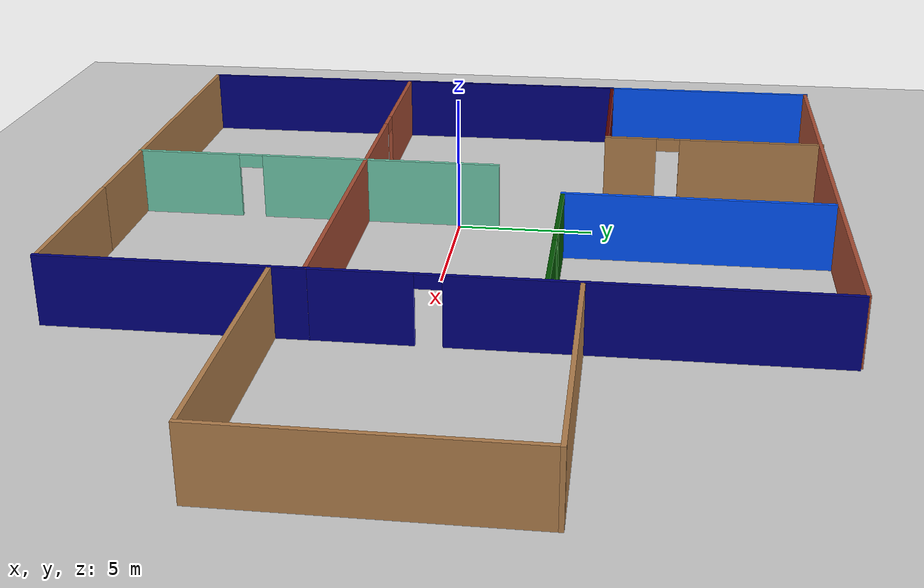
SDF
<sdf version="1.6">
 <world name="default">
  <model name="ground_plane">
   <static>1</static>
   <link name="link">
    <collision name="collision">
     <geometry><plane><normal>0 0 1</normal><size>100 100</size></plane></geometry>
     <surface><friction><ode><mu>100</mu><mu2>50</mu2></ode></friction></surface>
    </collision>
    <visual name="visual">
     <cast_shadows>0</cast_shadows>
     <geometry><plane><normal>0 0 1</normal><size>100 100</size></plane></geometry>
     <material>
      <script><uri>file://media/materials/scripts/gazebo.material</uri><name>Gazebo/Grey</name></script>
     </material>
    </visual>
   </link>
  </model>
  <model name="RGB_Walls_And_Doors">
   <link name="Wall_13">
    <pose>-4.768 13.0532 0 0 -0 3.14159</pose>
    <visual name="Wall_13_Visual">
     <pose>0 0 1.25 0 -0 0</pose>
     <geometry><box><size>20.35 0.15 2.5</size></box></geometry>
     <material>
      <script><uri>file://media/materials/scripts/gazebo.material</uri><name>Gazebo/Bricks</name></script>
      <ambient>1 1 1 1</ambient>
      <diffuse>1 1 1 1</diffuse>
      <specular>0.2 0.2 0.2 1</specular>
      <emissive>0 0 0 1</emissive>
     </material>
    </visual>
    <collision name="Wall_13_Collision">
     <pose>0 0 1.25 0 -0 0</pose>
     <geometry><box><size>20.35 0.15 2.5</size></box></geometry>
     <surface>
      <friction>
       <ode><mu>1</mu><mu2>1</mu2><fdir1>0 0 0</fdir1><slip1>0</slip1><slip2>0</slip2></ode>
       <torsional>
        <coefficient>1</coefficient>
        <patch_radius>0</patch_radius>
        <surface_radius>0</surface_radius>
        <use_patch_radius>1</use_patch_radius>
        <ode><slip>0</slip></ode>
       </torsional>
      </friction>
      <bounce><restitution_coefficient>0</restitution_coefficient><threshold>1e+06</threshold></bounce>
      <contact>
       <collide_without_contact>0</collide_without_contact>
       <collide_without_contact_bitmask>1</collide_without_contact_bitmask>
       <collide_bitmask>1</collide_bitmask>
       <ode>
        <soft_cfm>0</soft_cfm>
        <soft_erp>0.2</soft_erp>
        <kp>1e+13</kp>
        <kd>1</kd>
        <max_vel>0.01</max_vel>
        <min_depth>0</min_depth>
       </ode>
       <bullet>
        <split_impulse>1</split_impulse>
        <split_impulse_penetration_threshold>-0.01</split_impulse_penetration_threshold>
        <soft_cfm>0</soft_cfm>
        <soft_erp>0.2</soft_erp>
        <kp>1e+13</kp>
        <kd>1</kd>
       </bullet>
      </contact>
     </surface>
    </collision>
   </link>
   <link name="Wall_15">
    <pose>-7.693 -13.0468 0 0 -0 3.14159</pose>
    <visual name="Wall_15_Visual">
     <pose>0 0 1.25 0 -0 0</pose>
     <geometry><box><size>14.5 0.15 2.5</size></box></geometry>
     <material>
      <script><uri>file://media/materials/scripts/gazebo.material</uri><name>Gazebo/Wood</name></script>
      <ambient>1 1 1 1</ambient>
      <diffuse>1 1 1 1</diffuse>
      <specular>0.2 0.2 0.2 1</specular>
      <emissive>0 0 0 1</emissive>
     </material>
    </visual>
    <collision name="Wall_15_Collision">
     <pose>0 0 1.25 0 -0 0</pose>
     <geometry><box><size>14.5 0.15 2.5</size></box></geometry>
     <surface>
      <friction>
       <ode><mu>1</mu><mu2>1</mu2><fdir1>0 0 0</fdir1><slip1>0</slip1><slip2>0</slip2></ode>
       <torsional>
        <coefficient>1</coefficient>
        <patch_radius>0</patch_radius>
        <surface_radius>0</surface_radius>
        <use_patch_radius>1</use_patch_radius>
        <ode><slip>0</slip></ode>
       </torsional>
      </friction>
      <bounce><restitution_coefficient>0</restitution_coefficient><threshold>1e+06</threshold></bounce>
      <contact>
       <collide_without_contact>0</collide_without_contact>
       <collide_without_contact_bitmask>1</collide_without_contact_bitmask>
       <collide_bitmask>1</collide_bitmask>
       <ode>
        <soft_cfm>0</soft_cfm>
        <soft_erp>0.2</soft_erp>
        <kp>1e+13</kp>
        <kd>1</kd>
        <max_vel>0.01</max_vel>
        <min_depth>0</min_depth>
       </ode>
       <bullet>
        <split_impulse>1</split_impulse>
        <split_impulse_penetration_threshold>-0.01</split_impulse_penetration_threshold>
        <soft_cfm>0</soft_cfm>
        <soft_erp>0.2</soft_erp>
        <kp>1e+13</kp>
        <kd>1</kd>
       </bullet>
      </contact>
     </surface>
    </collision>
   </link>
   <link name="Wall_19">
    <pose>14.9404 -0.436235 0 0 -0 1.5708</pose>
    <visual name="Wall_19_Visual">
     <pose>0 0 1.25 0 -0 0</pose>
     <geometry><box><size>10 0.15 2.5</size></box></geometry>
     <material>
      <script><uri>file://media/materials/scripts/gazebo.material</uri><name>Gazebo/Wood</name></script>
      <ambient>1 1 1 1</ambient>
      <diffuse>1 1 1 1</diffuse>
      <specular>0.2 0.2 0.2 1</specular>
      <emissive>0 0 0 1</emissive>
     </material>
    </visual>
    <collision name="Wall_19_Collision">
     <pose>0 0 1.25 0 -0 0</pose>
     <geometry><box><size>10 0.15 2.5</size></box></geometry>
     <surface>
      <friction>
       <ode><mu>1</mu><mu2>1</mu2><fdir1>0 0 0</fdir1><slip1>0</slip1><slip2>0</slip2></ode>
       <torsional>
        <coefficient>1</coefficient>
        <patch_radius>0</patch_radius>
        <surface_radius>0</surface_radius>
        <use_patch_radius>1</use_patch_radius>
        <ode><slip>0</slip></ode>
       </torsional>
      </friction>
      <bounce><restitution_coefficient>0</restitution_coefficient><threshold>1e+06</threshold></bounce>
      <contact>
       <collide_without_contact>0</collide_without_contact>
       <collide_without_contact_bitmask>1</collide_without_contact_bitmask>
       <collide_bitmask>1</collide_bitmask>
       <ode>
        <soft_cfm>0</soft_cfm>
        <soft_erp>0.2</soft_erp>
        <kp>1e+13</kp>
        <kd>1</kd>
        <max_vel>0.01</max_vel>
        <min_depth>0</min_depth>
       </ode>
       <bullet>
        <split_impulse>1</split_impulse>
        <split_impulse_penetration_threshold>-0.01</split_impulse_penetration_threshold>
        <soft_cfm>0</soft_cfm>
        <soft_erp>0.2</soft_erp>
        <kp>1e+13</kp>
        <kd>1</kd>
       </bullet>
      </contact>
     </surface>
    </collision>
   </link>
   <link name="Wall_23">
    <pose>1.6654 3.38876 0 0 -0 3.14159</pose>
    <visual name="Wall_23_Visual_0">
     <pose>-2.17368 0 1.25 0 -0 0</pose>
     <geometry><box><size>3.15264 0.15 2.5</size></box></geometry>
     <material>
      <script><uri>file://media/materials/scripts/gazebo.material</uri><name>Gazebo/Grey</name></script>
      <ambient>0 0.333333 0 1</ambient>
      <diffuse>0.7 0.7 0.7 1</diffuse>
      <specular>0.01 0.01 0.01 1</specular>
      <emissive>0 0 0 1</emissive>
     </material>
    </visual>
    <visual name="Wall_23_Visual_1">
     <pose>2.02632 0 1.25 0 -0 0</pose>
     <geometry><box><size>3.44736 0.15 2.5</size></box></geometry>
     <material>
      <script><uri>file://media/materials/scripts/gazebo.material</uri><name>Gazebo/Grey</name></script>
      <ambient>0 0.333333 0 1</ambient>
      <diffuse>0.7 0.7 0.7 1</diffuse>
      <specular>0.01 0.01 0.01 1</specular>
      <emissive>0 0 0 1</emissive>
     </material>
    </visual>
    <visual name="Wall_23_Visual_2">
     <pose>-0.147364 0 2.25 0 -0 0</pose>
     <geometry><box><size>0.9 0.15 0.5</size></box></geometry>
     <material>
      <script><uri>file://media/materials/scripts/gazebo.material</uri><name>Gazebo/Grey</name></script>
      <ambient>0 0.333333 0 1</ambient>
      <diffuse>0.7 0.7 0.7 1</diffuse>
      <specular>0.01 0.01 0.01 1</specular>
      <emissive>0 0 0 1</emissive>
     </material>
    </visual>
    <collision name="Wall_23_Collision_0">
     <pose>-2.17368 0 1.25 0 -0 0</pose>
     <geometry><box><size>3.15264 0.15 2.5</size></box></geometry>
     <surface>
      <friction>
       <ode><mu>1</mu><mu2>1</mu2><fdir1>0 0 0</fdir1><slip1>0</slip1><slip2>0</slip2></ode>
       <torsional>
        <coefficient>1</coefficient>
        <patch_radius>0</patch_radius>
        <surface_radius>0</surface_radius>
        <use_patch_radius>1</use_patch_radius>
        <ode><slip>0</slip></ode>
       </torsional>
      </friction>
      <bounce><restitution_coefficient>0</restitution_coefficient><threshold>1e+06</threshold></bounce>
      <contact>
       <collide_without_contact>0</collide_without_contact>
       <collide_without_contact_bitmask>1</collide_without_contact_bitmask>
       <collide_bitmask>1</collide_bitmask>
       <ode>
        <soft_cfm>0</soft_cfm>
        <soft_erp>0.2</soft_erp>
        <kp>1e+13</kp>
        <kd>1</kd>
        <max_vel>0.01</max_vel>
        <min_depth>0</min_depth>
       </ode>
       <bullet>
        <split_impulse>1</split_impulse>
        <split_impulse_penetration_threshold>-0.01</split_impulse_penetration_threshold>
        <soft_cfm>0</soft_cfm>
        <soft_erp>0.2</soft_erp>
        <kp>1e+13</kp>
        <kd>1</kd>
       </bullet>
      </contact>
     </surface>
    </collision>
    <collision name="Wall_23_Collision_1">
     <pose>2.02632 0 1.25 0 -0 0</pose>
     <geometry><box><size>3.44736 0.15 2.5</size></box></geometry>
     <surface>
      <friction>
       <ode><mu>1</mu><mu2>1</mu2><fdir1>0 0 0</fdir1><slip1>0</slip1><slip2>0</slip2></ode>
       <torsional>
        <coefficient>1</coefficient>
        <patch_radius>0</patch_radius>
        <surface_radius>0</surface_radius>
        <use_patch_radius>1</use_patch_radius>
        <ode><slip>0</slip></ode>
       </torsional>
      </friction>
      <bounce><restitution_coefficient>0</restitution_coefficient><threshold>1e+06</threshold></bounce>
      <contact>
       <collide_without_contact>0</collide_without_contact>
       <collide_without_contact_bitmask>1</collide_without_contact_bitmask>
       <collide_bitmask>1</collide_bitmask>
       <ode>
        <soft_cfm>0</soft_cfm>
        <soft_erp>0.2</soft_erp>
        <kp>1e+13</kp>
        <kd>1</kd>
        <max_vel>0.01</max_vel>
        <min_depth>0</min_depth>
       </ode>
       <bullet>
        <split_impulse>1</split_impulse>
        <split_impulse_penetration_threshold>-0.01</split_impulse_penetration_threshold>
        <soft_cfm>0</soft_cfm>
        <soft_erp>0.2</soft_erp>
        <kp>1e+13</kp>
        <kd>1</kd>
       </bullet>
      </contact>
     </surface>
    </collision>
    <collision name="Wall_23_Collision_2">
     <pose>-0.147364 0 2.25 0 -0 0</pose>
     <geometry><box><size>0.9 0.15 0.5</size></box></geometry>
     <surface>
      <friction>
       <ode><mu>1</mu><mu2>1</mu2><fdir1>0 0 0</fdir1><slip1>0</slip1><slip2>0</slip2></ode>
       <torsional>
        <coefficient>1</coefficient>
        <patch_radius>0</patch_radius>
        <surface_radius>0</surface_radius>
        <use_patch_radius>1</use_patch_radius>
        <ode><slip>0</slip></ode>
       </torsional>
      </friction>
      <bounce><restitution_coefficient>0</restitution_coefficient><threshold>1e+06</threshold></bounce>
      <contact>
       <collide_without_contact>0</collide_without_contact>
       <collide_without_contact_bitmask>1</collide_without_contact_bitmask>
       <collide_bitmask>1</collide_bitmask>
       <ode>
        <soft_cfm>0</soft_cfm>
        <soft_erp>0.2</soft_erp>
        <kp>1e+13</kp>
        <kd>1</kd>
        <max_vel>0.01</max_vel>
        <min_depth>0</min_depth>
       </ode>
       <bullet>
        <split_impulse>1</split_impulse>
        <split_impulse_penetration_threshold>-0.01</split_impulse_penetration_threshold>
        <soft_cfm>0</soft_cfm>
        <soft_erp>0.2</soft_erp>
        <kp>1e+13</kp>
        <kd>1</kd>
       </bullet>
      </contact>
     </surface>
    </collision>
   </link>
   <link name="Wall_24">
    <pose>-2.0096 8.18877 0 0 -0 1.5708</pose>
    <visual name="Wall_24_Visual">
     <pose>0 0 1.25 0 -0 0</pose>
     <geometry><box><size>9.75 0.15 2.5</size></box></geometry>
     <material>
      <script><uri>file://media/materials/scripts/gazebo.material</uri><name>Gazebo/Grey</name></script>
      <ambient>0 0.333333 1 1</ambient>
      <diffuse>0.7 0.7 0.7 1</diffuse>
      <specular>0.01 0.01 0.01 1</specular>
      <emissive>0 0 0 1</emissive>
     </material>
    </visual>
    <collision name="Wall_24_Collision">
     <pose>0 0 1.25 0 -0 0</pose>
     <geometry><box><size>9.75 0.15 2.5</size></box></geometry>
     <surface>
      <friction>
       <ode><mu>1</mu><mu2>1</mu2><fdir1>0 0 0</fdir1><slip1>0</slip1><slip2>0</slip2></ode>
       <torsional>
        <coefficient>1</coefficient>
        <patch_radius>0</patch_radius>
        <surface_radius>0</surface_radius>
        <use_patch_radius>1</use_patch_radius>
        <ode><slip>0</slip></ode>
       </torsional>
      </friction>
      <bounce><restitution_coefficient>0</restitution_coefficient><threshold>1e+06</threshold></bounce>
      <contact>
       <collide_without_contact>0</collide_without_contact>
       <collide_without_contact_bitmask>1</collide_without_contact_bitmask>
       <collide_bitmask>1</collide_bitmask>
       <ode>
        <soft_cfm>0</soft_cfm>
        <soft_erp>0.2</soft_erp>
        <kp>1e+13</kp>
        <kd>1</kd>
        <max_vel>0.01</max_vel>
        <min_depth>0</min_depth>
       </ode>
       <bullet>
        <split_impulse>1</split_impulse>
        <split_impulse_penetration_threshold>-0.01</split_impulse_penetration_threshold>
        <soft_cfm>0</soft_cfm>
        <soft_erp>0.2</soft_erp>
        <kp>1e+13</kp>
        <kd>1</kd>
       </bullet>
      </contact>
     </surface>
    </collision>
   </link>
   <link name="Wall_32">
    <pose>-8.34009 8.91706 0 0 -0 1.5708</pose>
    <visual name="Wall_32_Visual_0">
     <pose>-3.23654 0 1.25 0 -0 0</pose>
     <geometry><box><size>2.02691 0.15 2.5</size></box></geometry>
     <material>
      <script><uri>file://media/materials/scripts/gazebo.material</uri><name>Gazebo/Wood</name></script>
      <ambient>1 1 1 1</ambient>
      <diffuse>1 1 1 1</diffuse>
      <specular>0.2 0.2 0.2 1</specular>
      <emissive>0 0 0 1</emissive>
     </material>
    </visual>
    <visual name="Wall_32_Visual_1">
     <pose>1.46346 0 1.25 0 -0 0</pose>
     <geometry><box><size>5.57309 0.15 2.5</size></box></geometry>
     <material>
      <script><uri>file://media/materials/scripts/gazebo.material</uri><name>Gazebo/Wood</name></script>
      <ambient>1 1 1 1</ambient>
      <diffuse>1 1 1 1</diffuse>
      <specular>0.2 0.2 0.2 1</specular>
      <emissive>0 0 0 1</emissive>
     </material>
    </visual>
    <visual name="Wall_32_Visual_2">
     <pose>-1.77309 0 2.25 0 -0 0</pose>
     <geometry><box><size>0.9 0.15 0.5</size></box></geometry>
     <material>
      <script><uri>file://media/materials/scripts/gazebo.material</uri><name>Gazebo/Wood</name></script>
      <ambient>1 1 1 1</ambient>
      <diffuse>1 1 1 1</diffuse>
      <specular>0.2 0.2 0.2 1</specular>
      <emissive>0 0 0 1</emissive>
     </material>
    </visual>
    <collision name="Wall_32_Collision_0">
     <pose>-3.23654 0 1.25 0 -0 0</pose>
     <geometry><box><size>2.02691 0.15 2.5</size></box></geometry>
     <surface>
      <friction>
       <ode><mu>1</mu><mu2>1</mu2><fdir1>0 0 0</fdir1><slip1>0</slip1><slip2>0</slip2></ode>
       <torsional>
        <coefficient>1</coefficient>
        <patch_radius>0</patch_radius>
        <surface_radius>0</surface_radius>
        <use_patch_radius>1</use_patch_radius>
        <ode><slip>0</slip></ode>
       </torsional>
      </friction>
      <bounce><restitution_coefficient>0</restitution_coefficient><threshold>1e+06</threshold></bounce>
      <contact>
       <collide_without_contact>0</collide_without_contact>
       <collide_without_contact_bitmask>1</collide_without_contact_bitmask>
       <collide_bitmask>1</collide_bitmask>
       <ode>
        <soft_cfm>0</soft_cfm>
        <soft_erp>0.2</soft_erp>
        <kp>1e+13</kp>
        <kd>1</kd>
        <max_vel>0.01</max_vel>
        <min_depth>0</min_depth>
       </ode>
       <bullet>
        <split_impulse>1</split_impulse>
        <split_impulse_penetration_threshold>-0.01</split_impulse_penetration_threshold>
        <soft_cfm>0</soft_cfm>
        <soft_erp>0.2</soft_erp>
        <kp>1e+13</kp>
        <kd>1</kd>
       </bullet>
      </contact>
     </surface>
    </collision>
    <collision name="Wall_32_Collision_1">
     <pose>1.46346 0 1.25 0 -0 0</pose>
     <geometry><box><size>5.57309 0.15 2.5</size></box></geometry>
     <surface>
      <friction>
       <ode><mu>1</mu><mu2>1</mu2><fdir1>0 0 0</fdir1><slip1>0</slip1><slip2>0</slip2></ode>
       <torsional>
        <coefficient>1</coefficient>
        <patch_radius>0</patch_radius>
        <surface_radius>0</surface_radius>
        <use_patch_radius>1</use_patch_radius>
        <ode><slip>0</slip></ode>
       </torsional>
      </friction>
      <bounce><restitution_coefficient>0</restitution_coefficient><threshold>1e+06</threshold></bounce>
      <contact>
       <collide_without_contact>0</collide_without_contact>
       <collide_without_contact_bitmask>1</collide_without_contact_bitmask>
       <collide_bitmask>1</collide_bitmask>
       <ode>
        <soft_cfm>0</soft_cfm>
        <soft_erp>0.2</soft_erp>
        <kp>1e+13</kp>
        <kd>1</kd>
        <max_vel>0.01</max_vel>
        <min_depth>0</min_depth>
       </ode>
       <bullet>
        <split_impulse>1</split_impulse>
        <split_impulse_penetration_threshold>-0.01</split_impulse_penetration_threshold>
        <soft_cfm>0</soft_cfm>
        <soft_erp>0.2</soft_erp>
        <kp>1e+13</kp>
        <kd>1</kd>
       </bullet>
      </contact>
     </surface>
    </collision>
    <collision name="Wall_32_Collision_2">
     <pose>-1.77309 0 2.25 0 -0 0</pose>
     <geometry><box><size>0.9 0.15 0.5</size></box></geometry>
     <surface>
      <friction>
       <ode><mu>1</mu><mu2>1</mu2><fdir1>0 0 0</fdir1><slip1>0</slip1><slip2>0</slip2></ode>
       <torsional>
        <coefficient>1</coefficient>
        <patch_radius>0</patch_radius>
        <surface_radius>0</surface_radius>
        <use_patch_radius>1</use_patch_radius>
        <ode><slip>0</slip></ode>
       </torsional>
      </friction>
      <bounce><restitution_coefficient>0</restitution_coefficient><threshold>1e+06</threshold></bounce>
      <contact>
       <collide_without_contact>0</collide_without_contact>
       <collide_without_contact_bitmask>1</collide_without_contact_bitmask>
       <collide_bitmask>1</collide_bitmask>
       <ode>
        <soft_cfm>0</soft_cfm>
        <soft_erp>0.2</soft_erp>
        <kp>1e+13</kp>
        <kd>1</kd>
        <max_vel>0.01</max_vel>
        <min_depth>0</min_depth>
       </ode>
       <bullet>
        <split_impulse>1</split_impulse>
        <split_impulse_penetration_threshold>-0.01</split_impulse_penetration_threshold>
        <soft_cfm>0</soft_cfm>
        <soft_erp>0.2</soft_erp>
        <kp>1e+13</kp>
        <kd>1</kd>
       </bullet>
      </contact>
     </surface>
    </collision>
   </link>
   <link name="Wall_38">
    <pose>-11.6401 4.74206 0 0 -0 3.14159</pose>
    <visual name="Wall_38_Visual">
     <pose>0 0 1.25 0 -0 0</pose>
     <geometry><box><size>6.75 0.15 2.5</size></box></geometry>
     <material>
      <script><uri>file://media/materials/scripts/gazebo.material</uri><name>Gazebo/Grey</name></script>
      <ambient>0.333333 0 0 1</ambient>
      <diffuse>0.7 0.7 0.7 1</diffuse>
      <specular>0.01 0.01 0.01 1</specular>
      <emissive>0 0 0 1</emissive>
     </material>
    </visual>
    <collision name="Wall_38_Collision">
     <pose>0 0 1.25 0 -0 0</pose>
     <geometry><box><size>6.75 0.15 2.5</size></box></geometry>
     <surface>
      <friction>
       <ode><mu>1</mu><mu2>1</mu2><fdir1>0 0 0</fdir1><slip1>0</slip1><slip2>0</slip2></ode>
       <torsional>
        <coefficient>1</coefficient>
        <patch_radius>0</patch_radius>
        <surface_radius>0</surface_radius>
        <use_patch_radius>1</use_patch_radius>
        <ode><slip>0</slip></ode>
       </torsional>
      </friction>
      <bounce><restitution_coefficient>0</restitution_coefficient><threshold>1e+06</threshold></bounce>
      <contact>
       <collide_without_contact>0</collide_without_contact>
       <collide_without_contact_bitmask>1</collide_without_contact_bitmask>
       <collide_bitmask>1</collide_bitmask>
       <ode>
        <soft_cfm>0</soft_cfm>
        <soft_erp>0.2</soft_erp>
        <kp>1e+13</kp>
        <kd>1</kd>
        <max_vel>0.01</max_vel>
        <min_depth>0</min_depth>
       </ode>
       <bullet>
        <split_impulse>1</split_impulse>
        <split_impulse_penetration_threshold>-0.01</split_impulse_penetration_threshold>
        <soft_cfm>0</soft_cfm>
        <soft_erp>0.2</soft_erp>
        <kp>1e+13</kp>
        <kd>1</kd>
       </bullet>
      </contact>
     </surface>
    </collision>
   </link>
   <link name="Wall_4">
    <pose>2.407 -13.0468 0 0 -0 3.14159</pose>
    <visual name="Wall_4_Visual">
     <pose>0 0 1.25 0 -0 0</pose>
     <geometry><box><size>6 0.15 2.5</size></box></geometry>
     <material>
      <script><uri>file://media/materials/scripts/gazebo.material</uri><name>Gazebo/Wood</name></script>
      <ambient>1 1 1 1</ambient>
      <diffuse>1 1 1 1</diffuse>
      <specular>0.2 0.2 0.2 1</specular>
      <emissive>0 0 0 1</emissive>
     </material>
    </visual>
    <collision name="Wall_4_Collision">
     <pose>0 0 1.25 0 -0 0</pose>
     <geometry><box><size>6 0.15 2.5</size></box></geometry>
     <surface>
      <friction>
       <ode><mu>1</mu><mu2>1</mu2><fdir1>0 0 0</fdir1><slip1>0</slip1><slip2>0</slip2></ode>
       <torsional>
        <coefficient>1</coefficient>
        <patch_radius>0</patch_radius>
        <surface_radius>0</surface_radius>
        <use_patch_radius>1</use_patch_radius>
        <ode><slip>0</slip></ode>
       </torsional>
      </friction>
      <bounce><restitution_coefficient>0</restitution_coefficient><threshold>1e+06</threshold></bounce>
      <contact>
       <collide_without_contact>0</collide_without_contact>
       <collide_without_contact_bitmask>1</collide_without_contact_bitmask>
       <collide_bitmask>1</collide_bitmask>
       <ode>
        <soft_cfm>0</soft_cfm>
        <soft_erp>0.2</soft_erp>
        <kp>1e+13</kp>
        <kd>1</kd>
        <max_vel>0.01</max_vel>
        <min_depth>0</min_depth>
       </ode>
       <bullet>
        <split_impulse>1</split_impulse>
        <split_impulse_penetration_threshold>-0.01</split_impulse_penetration_threshold>
        <soft_cfm>0</soft_cfm>
        <soft_erp>0.2</soft_erp>
        <kp>1e+13</kp>
        <kd>1</kd>
       </bullet>
      </contact>
     </surface>
    </collision>
   </link>
   <link name="Wall_40">
    <pose>-14.904 -4.15238 0 0 0 -1.56674</pose>
    <visual name="Wall_40_Visual">
     <pose>0 0 1.25 0 -0 0</pose>
     <geometry><box><size>17.939 0.15 2.5</size></box></geometry>
     <material>
      <script><uri>file://media/materials/scripts/gazebo.material</uri><name>Gazebo/Grey</name></script>
      <ambient>0 0 0.498039 1</ambient>
      <diffuse>0.7 0.7 0.7 1</diffuse>
      <specular>0.01 0.01 0.01 1</specular>
      <emissive>0 0 0 1</emissive>
     </material>
    </visual>
    <collision name="Wall_40_Collision">
     <pose>0 0 1.25 0 -0 0</pose>
     <geometry><box><size>17.939 0.15 2.5</size></box></geometry>
     <surface>
      <friction>
       <ode><mu>1</mu><mu2>1</mu2><fdir1>0 0 0</fdir1><slip1>0</slip1><slip2>0</slip2></ode>
       <torsional>
        <coefficient>1</coefficient>
        <patch_radius>0</patch_radius>
        <surface_radius>0</surface_radius>
        <use_patch_radius>1</use_patch_radius>
        <ode><slip>0</slip></ode>
       </torsional>
      </friction>
      <bounce><restitution_coefficient>0</restitution_coefficient><threshold>1e+06</threshold></bounce>
      <contact>
       <collide_without_contact>0</collide_without_contact>
       <collide_without_contact_bitmask>1</collide_without_contact_bitmask>
       <collide_bitmask>1</collide_bitmask>
       <ode>
        <soft_cfm>0</soft_cfm>
        <soft_erp>0.2</soft_erp>
        <kp>1e+13</kp>
        <kd>1</kd>
        <max_vel>0.01</max_vel>
        <min_depth>0</min_depth>
       </ode>
       <bullet>
        <split_impulse>1</split_impulse>
        <split_impulse_penetration_threshold>-0.01</split_impulse_penetration_threshold>
        <soft_cfm>0</soft_cfm>
        <soft_erp>0.2</soft_erp>
        <kp>1e+13</kp>
        <kd>1</kd>
       </bullet>
      </contact>
     </surface>
    </collision>
   </link>
   <link name="Wall_42">
    <pose>-14.9401 8.91706 0 0 -0 1.5708</pose>
    <visual name="Wall_42_Visual">
     <pose>0 0 1.25 0 -0 0</pose>
     <geometry><box><size>8.5 0.15 2.5</size></box></geometry>
     <material>
      <script><uri>file://media/materials/scripts/gazebo.material</uri><name>Gazebo/Grey</name></script>
      <ambient>0 0.333333 1 1</ambient>
      <diffuse>0.7 0.7 0.7 1</diffuse>
      <specular>0.01 0.01 0.01 1</specular>
      <emissive>0 0 0 1</emissive>
     </material>
    </visual>
    <collision name="Wall_42_Collision">
     <pose>0 0 1.25 0 -0 0</pose>
     <geometry><box><size>8.5 0.15 2.5</size></box></geometry>
     <surface>
      <friction>
       <ode><mu>1</mu><mu2>1</mu2><fdir1>0 0 0</fdir1><slip1>0</slip1><slip2>0</slip2></ode>
       <torsional>
        <coefficient>1</coefficient>
        <patch_radius>0</patch_radius>
        <surface_radius>0</surface_radius>
        <use_patch_radius>1</use_patch_radius>
        <ode><slip>0</slip></ode>
       </torsional>
      </friction>
      <bounce><restitution_coefficient>0</restitution_coefficient><threshold>1e+06</threshold></bounce>
      <contact>
       <collide_without_contact>0</collide_without_contact>
       <collide_without_contact_bitmask>1</collide_without_contact_bitmask>
       <collide_bitmask>1</collide_bitmask>
       <ode>
        <soft_cfm>0</soft_cfm>
        <soft_erp>0.2</soft_erp>
        <kp>1e+13</kp>
        <kd>1</kd>
        <max_vel>0.01</max_vel>
        <min_depth>0</min_depth>
       </ode>
       <bullet>
        <split_impulse>1</split_impulse>
        <split_impulse_penetration_threshold>-0.01</split_impulse_penetration_threshold>
        <soft_cfm>0</soft_cfm>
        <soft_erp>0.2</soft_erp>
        <kp>1e+13</kp>
        <kd>1</kd>
       </bullet>
      </contact>
     </surface>
    </collision>
   </link>
   <link name="Wall_44">
    <pose>-14.9401 0.192064 0 0 0 -1.5708</pose>
    <visual name="Wall_44_Visual">
     <pose>0 0 1.25 0 -0 0</pose>
     <geometry><box><size>9.25 0.15 2.5</size></box></geometry>
     <material>
      <script><uri>file://media/materials/scripts/gazebo.material</uri><name>Gazebo/Grey</name></script>
      <ambient>0 0 0.498039 1</ambient>
      <diffuse>0.7 0.7 0.7 1</diffuse>
      <specular>0.01 0.01 0.01 1</specular>
      <emissive>0 0 0 1</emissive>
     </material>
    </visual>
    <collision name="Wall_44_Collision">
     <pose>0 0 1.25 0 -0 0</pose>
     <geometry><box><size>9.25 0.15 2.5</size></box></geometry>
     <surface>
      <friction>
       <ode><mu>1</mu><mu2>1</mu2><fdir1>0 0 0</fdir1><slip1>0</slip1><slip2>0</slip2></ode>
       <torsional>
        <coefficient>1</coefficient>
        <patch_radius>0</patch_radius>
        <surface_radius>0</surface_radius>
        <use_patch_radius>1</use_patch_radius>
        <ode><slip>0</slip></ode>
       </torsional>
      </friction>
      <bounce><restitution_coefficient>0</restitution_coefficient><threshold>1e+06</threshold></bounce>
      <contact>
       <collide_without_contact>0</collide_without_contact>
       <collide_without_contact_bitmask>1</collide_without_contact_bitmask>
       <collide_bitmask>1</collide_bitmask>
       <ode>
        <soft_cfm>0</soft_cfm>
        <soft_erp>0.2</soft_erp>
        <kp>1e+13</kp>
        <kd>1</kd>
        <max_vel>0.01</max_vel>
        <min_depth>0</min_depth>
       </ode>
       <bullet>
        <split_impulse>1</split_impulse>
        <split_impulse_penetration_threshold>-0.01</split_impulse_penetration_threshold>
        <soft_cfm>0</soft_cfm>
        <soft_erp>0.2</soft_erp>
        <kp>1e+13</kp>
        <kd>1</kd>
       </bullet>
      </contact>
     </surface>
    </collision>
   </link>
   <link name="Wall_53">
    <pose>-4.73809 -4.24206 0 0 -0 0</pose>
    <visual name="Wall_53_Visual_0">
     <pose>-7.67312 0 1.25 0 -0 0</pose>
     <geometry><box><size>5.15375 0.15 2.5</size></box></geometry>
     <material>
      <script><uri>file://media/materials/scripts/gazebo.material</uri><name>Gazebo/Bricks</name></script>
      <ambient>1 1 1 1</ambient>
      <diffuse>1 1 1 1</diffuse>
      <specular>0.2 0.2 0.2 1</specular>
      <emissive>0 0 0 1</emissive>
     </material>
    </visual>
    <visual name="Wall_53_Visual_1">
     <pose>3.02688 0 1.25 0 -0 0</pose>
     <geometry><box><size>14.4462 0.15 2.5</size></box></geometry>
     <material>
      <script><uri>file://media/materials/scripts/gazebo.material</uri><name>Gazebo/Bricks</name></script>
      <ambient>1 1 1 1</ambient>
      <diffuse>1 1 1 1</diffuse>
      <specular>0.2 0.2 0.2 1</specular>
      <emissive>0 0 0 1</emissive>
     </material>
    </visual>
    <visual name="Wall_53_Visual_2">
     <pose>-4.64625 0 2.25 0 -0 0</pose>
     <geometry><box><size>0.9 0.15 0.5</size></box></geometry>
     <material>
      <script><uri>file://media/materials/scripts/gazebo.material</uri><name>Gazebo/Bricks</name></script>
      <ambient>1 1 1 1</ambient>
      <diffuse>1 1 1 1</diffuse>
      <specular>0.2 0.2 0.2 1</specular>
      <emissive>0 0 0 1</emissive>
     </material>
    </visual>
    <collision name="Wall_53_Collision_0">
     <pose>-7.67312 0 1.25 0 -0 0</pose>
     <geometry><box><size>5.15375 0.15 2.5</size></box></geometry>
     <surface>
      <friction>
       <ode><mu>1</mu><mu2>1</mu2><fdir1>0 0 0</fdir1><slip1>0</slip1><slip2>0</slip2></ode>
       <torsional>
        <coefficient>1</coefficient>
        <patch_radius>0</patch_radius>
        <surface_radius>0</surface_radius>
        <use_patch_radius>1</use_patch_radius>
        <ode><slip>0</slip></ode>
       </torsional>
      </friction>
      <bounce><restitution_coefficient>0</restitution_coefficient><threshold>1e+06</threshold></bounce>
      <contact>
       <collide_without_contact>0</collide_without_contact>
       <collide_without_contact_bitmask>1</collide_without_contact_bitmask>
       <collide_bitmask>1</collide_bitmask>
       <ode>
        <soft_cfm>0</soft_cfm>
        <soft_erp>0.2</soft_erp>
        <kp>1e+13</kp>
        <kd>1</kd>
        <max_vel>0.01</max_vel>
        <min_depth>0</min_depth>
       </ode>
       <bullet>
        <split_impulse>1</split_impulse>
        <split_impulse_penetration_threshold>-0.01</split_impulse_penetration_threshold>
        <soft_cfm>0</soft_cfm>
        <soft_erp>0.2</soft_erp>
        <kp>1e+13</kp>
        <kd>1</kd>
       </bullet>
      </contact>
     </surface>
    </collision>
    <collision name="Wall_53_Collision_1">
     <pose>3.02688 0 1.25 0 -0 0</pose>
     <geometry><box><size>14.4462 0.15 2.5</size></box></geometry>
     <surface>
      <friction>
       <ode><mu>1</mu><mu2>1</mu2><fdir1>0 0 0</fdir1><slip1>0</slip1><slip2>0</slip2></ode>
       <torsional>
        <coefficient>1</coefficient>
        <patch_radius>0</patch_radius>
        <surface_radius>0</surface_radius>
        <use_patch_radius>1</use_patch_radius>
        <ode><slip>0</slip></ode>
       </torsional>
      </friction>
      <bounce><restitution_coefficient>0</restitution_coefficient><threshold>1e+06</threshold></bounce>
      <contact>
       <collide_without_contact>0</collide_without_contact>
       <collide_without_contact_bitmask>1</collide_without_contact_bitmask>
       <collide_bitmask>1</collide_bitmask>
       <ode>
        <soft_cfm>0</soft_cfm>
        <soft_erp>0.2</soft_erp>
        <kp>1e+13</kp>
        <kd>1</kd>
        <max_vel>0.01</max_vel>
        <min_depth>0</min_depth>
       </ode>
       <bullet>
        <split_impulse>1</split_impulse>
        <split_impulse_penetration_threshold>-0.01</split_impulse_penetration_threshold>
        <soft_cfm>0</soft_cfm>
        <soft_erp>0.2</soft_erp>
        <kp>1e+13</kp>
        <kd>1</kd>
       </bullet>
      </contact>
     </surface>
    </collision>
    <collision name="Wall_53_Collision_2">
     <pose>-4.64625 0 2.25 0 -0 0</pose>
     <geometry><box><size>0.9 0.15 0.5</size></box></geometry>
     <surface>
      <friction>
       <ode><mu>1</mu><mu2>1</mu2><fdir1>0 0 0</fdir1><slip1>0</slip1><slip2>0</slip2></ode>
       <torsional>
        <coefficient>1</coefficient>
        <patch_radius>0</patch_radius>
        <surface_radius>0</surface_radius>
        <use_patch_radius>1</use_patch_radius>
        <ode><slip>0</slip></ode>
       </torsional>
      </friction>
      <bounce><restitution_coefficient>0</restitution_coefficient><threshold>1e+06</threshold></bounce>
      <contact>
       <collide_without_contact>0</collide_without_contact>
       <collide_without_contact_bitmask>1</collide_without_contact_bitmask>
       <collide_bitmask>1</collide_bitmask>
       <ode>
        <soft_cfm>0</soft_cfm>
        <soft_erp>0.2</soft_erp>
        <kp>1e+13</kp>
        <kd>1</kd>
        <max_vel>0.01</max_vel>
        <min_depth>0</min_depth>
       </ode>
       <bullet>
        <split_impulse>1</split_impulse>
        <split_impulse_penetration_threshold>-0.01</split_impulse_penetration_threshold>
        <soft_cfm>0</soft_cfm>
        <soft_erp>0.2</soft_erp>
        <kp>1e+13</kp>
        <kd>1</kd>
       </bullet>
      </contact>
     </surface>
    </collision>
   </link>
   <link name="Wall_55">
    <pose>5.43691 -8.66706 0 0 0 -1.5708</pose>
    <visual name="Wall_55_Visual">
     <pose>0 0 1.25 0 -0 0</pose>
     <geometry><box><size>9 0.15 2.5</size></box></geometry>
     <material>
      <script><uri>file://media/materials/scripts/gazebo.material</uri><name>Gazebo/Grey</name></script>
      <ambient>0 0 0.498039 1</ambient>
      <diffuse>0.7 0.7 0.7 1</diffuse>
      <specular>0.01 0.01 0.01 1</specular>
      <emissive>0 0 0 1</emissive>
     </material>
    </visual>
    <collision name="Wall_55_Collision">
     <pose>0 0 1.25 0 -0 0</pose>
     <geometry><box><size>9 0.15 2.5</size></box></geometry>
     <surface>
      <friction>
       <ode><mu>1</mu><mu2>1</mu2><fdir1>0 0 0</fdir1><slip1>0</slip1><slip2>0</slip2></ode>
       <torsional>
        <coefficient>1</coefficient>
        <patch_radius>0</patch_radius>
        <surface_radius>0</surface_radius>
        <use_patch_radius>1</use_patch_radius>
        <ode><slip>0</slip></ode>
       </torsional>
      </friction>
      <bounce><restitution_coefficient>0</restitution_coefficient><threshold>1e+06</threshold></bounce>
      <contact>
       <collide_without_contact>0</collide_without_contact>
       <collide_without_contact_bitmask>1</collide_without_contact_bitmask>
       <collide_bitmask>1</collide_bitmask>
       <ode>
        <soft_cfm>0</soft_cfm>
        <soft_erp>0.2</soft_erp>
        <kp>1e+13</kp>
        <kd>1</kd>
        <max_vel>0.01</max_vel>
        <min_depth>0</min_depth>
       </ode>
       <bullet>
        <split_impulse>1</split_impulse>
        <split_impulse_penetration_threshold>-0.01</split_impulse_penetration_threshold>
        <soft_cfm>0</soft_cfm>
        <soft_erp>0.2</soft_erp>
        <kp>1e+13</kp>
        <kd>1</kd>
       </bullet>
      </contact>
     </surface>
    </collision>
   </link>
   <link name="Wall_64">
    <pose>5.43149 4.17662 0 0 -0 1.5708</pose>
    <visual name="Wall_64_Visual_0">
     <pose>-6.91083 0 1.25 0 -0 0</pose>
     <geometry><box><size>3.92834 0.15 2.5</size></box></geometry>
     <material>
      <script><uri>file://media/materials/scripts/gazebo.material</uri><name>Gazebo/Grey</name></script>
      <ambient>0 0 0.498039 1</ambient>
      <diffuse>0.7 0.7 0.7 1</diffuse>
      <specular>0.01 0.01 0.01 1</specular>
      <emissive>0 0 0 1</emissive>
     </material>
    </visual>
    <visual name="Wall_64_Visual_1">
     <pose>2.41417 0 1.25 0 -0 0</pose>
     <geometry><box><size>12.9217 0.15 2.5</size></box></geometry>
     <material>
      <script><uri>file://media/materials/scripts/gazebo.material</uri><name>Gazebo/Grey</name></script>
      <ambient>0 0 0.498039 1</ambient>
      <diffuse>0.7 0.7 0.7 1</diffuse>
      <specular>0.01 0.01 0.01 1</specular>
      <emissive>0 0 0 1</emissive>
     </material>
    </visual>
    <visual name="Wall_64_Visual_2">
     <pose>-4.49666 0 2.25 0 -0 0</pose>
     <geometry><box><size>0.9 0.15 0.5</size></box></geometry>
     <material>
      <script><uri>file://media/materials/scripts/gazebo.material</uri><name>Gazebo/Grey</name></script>
      <ambient>0 0 0.498039 1</ambient>
      <diffuse>0.7 0.7 0.7 1</diffuse>
      <specular>0.01 0.01 0.01 1</specular>
      <emissive>0 0 0 1</emissive>
     </material>
    </visual>
    <collision name="Wall_64_Collision_0">
     <pose>-6.91083 0 1.25 0 -0 0</pose>
     <geometry><box><size>3.92834 0.15 2.5</size></box></geometry>
     <surface>
      <friction>
       <ode><mu>1</mu><mu2>1</mu2><fdir1>0 0 0</fdir1><slip1>0</slip1><slip2>0</slip2></ode>
       <torsional>
        <coefficient>1</coefficient>
        <patch_radius>0</patch_radius>
        <surface_radius>0</surface_radius>
        <use_patch_radius>1</use_patch_radius>
        <ode><slip>0</slip></ode>
       </torsional>
      </friction>
      <bounce><restitution_coefficient>0</restitution_coefficient><threshold>1e+06</threshold></bounce>
      <contact>
       <collide_without_contact>0</collide_without_contact>
       <collide_without_contact_bitmask>1</collide_without_contact_bitmask>
       <collide_bitmask>1</collide_bitmask>
       <ode>
        <soft_cfm>0</soft_cfm>
        <soft_erp>0.2</soft_erp>
        <kp>1e+13</kp>
        <kd>1</kd>
        <max_vel>0.01</max_vel>
        <min_depth>0</min_depth>
       </ode>
       <bullet>
        <split_impulse>1</split_impulse>
        <split_impulse_penetration_threshold>-0.01</split_impulse_penetration_threshold>
        <soft_cfm>0</soft_cfm>
        <soft_erp>0.2</soft_erp>
        <kp>1e+13</kp>
        <kd>1</kd>
       </bullet>
      </contact>
     </surface>
    </collision>
    <collision name="Wall_64_Collision_1">
     <pose>2.41417 0 1.25 0 -0 0</pose>
     <geometry><box><size>12.9217 0.15 2.5</size></box></geometry>
     <surface>
      <friction>
       <ode><mu>1</mu><mu2>1</mu2><fdir1>0 0 0</fdir1><slip1>0</slip1><slip2>0</slip2></ode>
       <torsional>
        <coefficient>1</coefficient>
        <patch_radius>0</patch_radius>
        <surface_radius>0</surface_radius>
        <use_patch_radius>1</use_patch_radius>
        <ode><slip>0</slip></ode>
       </torsional>
      </friction>
      <bounce><restitution_coefficient>0</restitution_coefficient><threshold>1e+06</threshold></bounce>
      <contact>
       <collide_without_contact>0</collide_without_contact>
       <collide_without_contact_bitmask>1</collide_without_contact_bitmask>
       <collide_bitmask>1</collide_bitmask>
       <ode>
        <soft_cfm>0</soft_cfm>
        <soft_erp>0.2</soft_erp>
        <kp>1e+13</kp>
        <kd>1</kd>
        <max_vel>0.01</max_vel>
        <min_depth>0</min_depth>
       </ode>
       <bullet>
        <split_impulse>1</split_impulse>
        <split_impulse_penetration_threshold>-0.01</split_impulse_penetration_threshold>
        <soft_cfm>0</soft_cfm>
        <soft_erp>0.2</soft_erp>
        <kp>1e+13</kp>
        <kd>1</kd>
       </bullet>
      </contact>
     </surface>
    </collision>
    <collision name="Wall_64_Collision_2">
     <pose>-4.49666 0 2.25 0 -0 0</pose>
     <geometry><box><size>0.9 0.15 0.5</size></box></geometry>
     <surface>
      <friction>
       <ode><mu>1</mu><mu2>1</mu2><fdir1>0 0 0</fdir1><slip1>0</slip1><slip2>0</slip2></ode>
       <torsional>
        <coefficient>1</coefficient>
        <patch_radius>0</patch_radius>
        <surface_radius>0</surface_radius>
        <use_patch_radius>1</use_patch_radius>
        <ode><slip>0</slip></ode>
       </torsional>
      </friction>
      <bounce><restitution_coefficient>0</restitution_coefficient><threshold>1e+06</threshold></bounce>
      <contact>
       <collide_without_contact>0</collide_without_contact>
       <collide_without_contact_bitmask>1</collide_without_contact_bitmask>
       <collide_bitmask>1</collide_bitmask>
       <ode>
        <soft_cfm>0</soft_cfm>
        <soft_erp>0.2</soft_erp>
        <kp>1e+13</kp>
        <kd>1</kd>
        <max_vel>0.01</max_vel>
        <min_depth>0</min_depth>
       </ode>
       <bullet>
        <split_impulse>1</split_impulse>
        <split_impulse_penetration_threshold>-0.01</split_impulse_penetration_threshold>
        <soft_cfm>0</soft_cfm>
        <soft_erp>0.2</soft_erp>
        <kp>1e+13</kp>
        <kd>1</kd>
       </bullet>
      </contact>
     </surface>
    </collision>
   </link>
   <link name="Wall_67">
    <pose>10.2654 4.48876 0 0 -0 3.14159</pose>
    <visual name="Wall_67_Visual">
     <pose>0 0 1.25 0 -0 0</pose>
     <geometry><box><size>9.5 0.15 2.5</size></box></geometry>
     <material>
      <script><uri>file://media/materials/scripts/gazebo.material</uri><name>Gazebo/Wood</name></script>
      <ambient>1 1 1 1</ambient>
      <diffuse>1 1 1 1</diffuse>
      <specular>0.2 0.2 0.2 1</specular>
      <emissive>0 0 0 1</emissive>
     </material>
    </visual>
    <collision name="Wall_67_Collision">
     <pose>0 0 1.25 0 -0 0</pose>
     <geometry><box><size>9.5 0.15 2.5</size></box></geometry>
     <surface>
      <friction>
       <ode><mu>1</mu><mu2>1</mu2><fdir1>0 0 0</fdir1><slip1>0</slip1><slip2>0</slip2></ode>
       <torsional>
        <coefficient>1</coefficient>
        <patch_radius>0</patch_radius>
        <surface_radius>0</surface_radius>
        <use_patch_radius>1</use_patch_radius>
        <ode><slip>0</slip></ode>
       </torsional>
      </friction>
      <bounce><restitution_coefficient>0</restitution_coefficient><threshold>1e+06</threshold></bounce>
      <contact>
       <collide_without_contact>0</collide_without_contact>
       <collide_without_contact_bitmask>1</collide_without_contact_bitmask>
       <collide_bitmask>1</collide_bitmask>
       <ode>
        <soft_cfm>0</soft_cfm>
        <soft_erp>0.2</soft_erp>
        <kp>1e+13</kp>
        <kd>1</kd>
        <max_vel>0.01</max_vel>
        <min_depth>0</min_depth>
       </ode>
       <bullet>
        <split_impulse>1</split_impulse>
        <split_impulse_penetration_threshold>-0.01</split_impulse_penetration_threshold>
        <soft_cfm>0</soft_cfm>
        <soft_erp>0.2</soft_erp>
        <kp>1e+13</kp>
        <kd>1</kd>
       </bullet>
      </contact>
     </surface>
    </collision>
   </link>
   <link name="Wall_69">
    <pose>10.2654 -5.36123 0 0 -0 3.14159</pose>
    <visual name="Wall_69_Visual">
     <pose>0 0 1.25 0 -0 0</pose>
     <geometry><box><size>9.5 0.15 2.5</size></box></geometry>
     <material>
      <script><uri>file://media/materials/scripts/gazebo.material</uri><name>Gazebo/Wood</name></script>
      <ambient>1 1 1 1</ambient>
      <diffuse>1 1 1 1</diffuse>
      <specular>0.2 0.2 0.2 1</specular>
      <emissive>0 0 0 1</emissive>
     </material>
    </visual>
    <collision name="Wall_69_Collision">
     <pose>0 0 1.25 0 -0 0</pose>
     <geometry><box><size>9.5 0.15 2.5</size></box></geometry>
     <surface>
      <friction>
       <ode><mu>1</mu><mu2>1</mu2><fdir1>0 0 0</fdir1><slip1>0</slip1><slip2>0</slip2></ode>
       <torsional>
        <coefficient>1</coefficient>
        <patch_radius>0</patch_radius>
        <surface_radius>0</surface_radius>
        <use_patch_radius>1</use_patch_radius>
        <ode><slip>0</slip></ode>
       </torsional>
      </friction>
      <bounce><restitution_coefficient>0</restitution_coefficient><threshold>1e+06</threshold></bounce>
      <contact>
       <collide_without_contact>0</collide_without_contact>
       <collide_without_contact_bitmask>1</collide_without_contact_bitmask>
       <collide_bitmask>1</collide_bitmask>
       <ode>
        <soft_cfm>0</soft_cfm>
        <soft_erp>0.2</soft_erp>
        <kp>1e+13</kp>
        <kd>1</kd>
        <max_vel>0.01</max_vel>
        <min_depth>0</min_depth>
       </ode>
       <bullet>
        <split_impulse>1</split_impulse>
        <split_impulse_penetration_threshold>-0.01</split_impulse_penetration_threshold>
        <soft_cfm>0</soft_cfm>
        <soft_erp>0.2</soft_erp>
        <kp>1e+13</kp>
        <kd>1</kd>
       </bullet>
      </contact>
     </surface>
    </collision>
   </link>
   <link name="Wall_71">
    <pose>-4.61205 -6.14848 0 0 -0 1.5708</pose>
    <visual name="Wall_71_Visual_0">
     <pose>-5.00164 0 1.25 0 -0 0</pose>
     <geometry><box><size>3.99672 0.15 2.5</size></box></geometry>
     <material>
      <script><uri>file://media/materials/scripts/gazebo.material</uri><name>Gazebo/Grey</name></script>
      <ambient>0.435294 0.796078 0.67451 1</ambient>
      <diffuse>0.7 0.7 0.7 1</diffuse>
      <specular>0.01 0.01 0.01 1</specular>
      <emissive>0 0 0 1</emissive>
     </material>
    </visual>
    <visual name="Wall_71_Visual_1">
     <pose>2.44836 0 1.25 0 -0 0</pose>
     <geometry><box><size>9.10328 0.15 2.5</size></box></geometry>
     <material>
      <script><uri>file://media/materials/scripts/gazebo.material</uri><name>Gazebo/Grey</name></script>
      <ambient>0.435294 0.796078 0.67451 1</ambient>
      <diffuse>0.7 0.7 0.7 1</diffuse>
      <specular>0.01 0.01 0.01 1</specular>
      <emissive>0 0 0 1</emissive>
     </material>
    </visual>
    <visual name="Wall_71_Visual_2">
     <pose>-2.55328 0 2.25 0 -0 0</pose>
     <geometry><box><size>0.9 0.15 0.5</size></box></geometry>
     <material>
      <script><uri>file://media/materials/scripts/gazebo.material</uri><name>Gazebo/Grey</name></script>
      <ambient>0.435294 0.796078 0.67451 1</ambient>
      <diffuse>0.7 0.7 0.7 1</diffuse>
      <specular>0.01 0.01 0.01 1</specular>
      <emissive>0 0 0 1</emissive>
     </material>
    </visual>
    <collision name="Wall_71_Collision_1">
     <pose>2.44836 0 1.25 0 -0 0</pose>
     <geometry><box><size>9.10328 0.15 2.5</size></box></geometry>
     <surface>
      <friction>
       <ode><mu>1</mu><mu2>1</mu2><fdir1>0 0 0</fdir1><slip1>0</slip1><slip2>0</slip2></ode>
       <torsional>
        <coefficient>1</coefficient>
        <patch_radius>0</patch_radius>
        <surface_radius>0</surface_radius>
        <use_patch_radius>1</use_patch_radius>
        <ode><slip>0</slip></ode>
       </torsional>
      </friction>
      <bounce><restitution_coefficient>0</restitution_coefficient><threshold>1e+06</threshold></bounce>
      <contact>
       <collide_without_contact>0</collide_without_contact>
       <collide_without_contact_bitmask>1</collide_without_contact_bitmask>
       <collide_bitmask>1</collide_bitmask>
       <ode>
        <soft_cfm>0</soft_cfm>
        <soft_erp>0.2</soft_erp>
        <kp>1e+13</kp>
        <kd>1</kd>
        <max_vel>0.01</max_vel>
        <min_depth>0</min_depth>
       </ode>
       <bullet>
        <split_impulse>1</split_impulse>
        <split_impulse_penetration_threshold>-0.01</split_impulse_penetration_threshold>
        <soft_cfm>0</soft_cfm>
        <soft_erp>0.2</soft_erp>
        <kp>1e+13</kp>
        <kd>1</kd>
       </bullet>
      </contact>
     </surface>
    </collision>
    <collision name="Wall_71_Collision_0">
     <pose>-5.00164 0 1.25 0 -0 0</pose>
     <geometry><box><size>3.99672 0.15 2.5</size></box></geometry>
     <surface>
      <friction>
       <ode><mu>1</mu><mu2>1</mu2><fdir1>0 0 0</fdir1><slip1>0</slip1><slip2>0</slip2></ode>
       <torsional>
        <coefficient>1</coefficient>
        <patch_radius>0</patch_radius>
        <surface_radius>0</surface_radius>
        <use_patch_radius>1</use_patch_radius>
        <ode><slip>0</slip></ode>
       </torsional>
      </friction>
      <bounce><restitution_coefficient>0</restitution_coefficient><threshold>1e+06</threshold></bounce>
      <contact>
       <collide_without_contact>0</collide_without_contact>
       <collide_without_contact_bitmask>1</collide_without_contact_bitmask>
       <collide_bitmask>1</collide_bitmask>
       <ode>
        <soft_cfm>0</soft_cfm>
        <soft_erp>0.2</soft_erp>
        <kp>1e+13</kp>
        <kd>1</kd>
        <max_vel>0.01</max_vel>
        <min_depth>0</min_depth>
       </ode>
       <bullet>
        <split_impulse>1</split_impulse>
        <split_impulse_penetration_threshold>-0.01</split_impulse_penetration_threshold>
        <soft_cfm>0</soft_cfm>
        <soft_erp>0.2</soft_erp>
        <kp>1e+13</kp>
        <kd>1</kd>
       </bullet>
      </contact>
     </surface>
    </collision>
    <collision name="Wall_71_Collision_2">
     <pose>-2.55328 0 2.25 0 -0 0</pose>
     <geometry><box><size>0.9 0.15 0.5</size></box></geometry>
     <surface>
      <friction>
       <ode><mu>1</mu><mu2>1</mu2><fdir1>0 0 0</fdir1><slip1>0</slip1><slip2>0</slip2></ode>
       <torsional>
        <coefficient>1</coefficient>
        <patch_radius>0</patch_radius>
        <surface_radius>0</surface_radius>
        <use_patch_radius>1</use_patch_radius>
        <ode><slip>0</slip></ode>
       </torsional>
      </friction>
      <bounce><restitution_coefficient>0</restitution_coefficient><threshold>1e+06</threshold></bounce>
      <contact>
       <collide_without_contact>0</collide_without_contact>
       <collide_without_contact_bitmask>1</collide_without_contact_bitmask>
       <collide_bitmask>1</collide_bitmask>
       <ode>
        <soft_cfm>0</soft_cfm>
        <soft_erp>0.2</soft_erp>
        <kp>1e+13</kp>
        <kd>1</kd>
        <max_vel>0.01</max_vel>
        <min_depth>0</min_depth>
       </ode>
       <bullet>
        <split_impulse>1</split_impulse>
        <split_impulse_penetration_threshold>-0.01</split_impulse_penetration_threshold>
        <soft_cfm>0</soft_cfm>
        <soft_erp>0.2</soft_erp>
        <kp>1e+13</kp>
        <kd>1</kd>
       </bullet>
      </contact>
     </surface>
    </collision>
   </link>
   <static>1</static>
   <pose>4.40551 0.644561 0 0 -0 0</pose>
  </model>
 </world>
</sdf>
